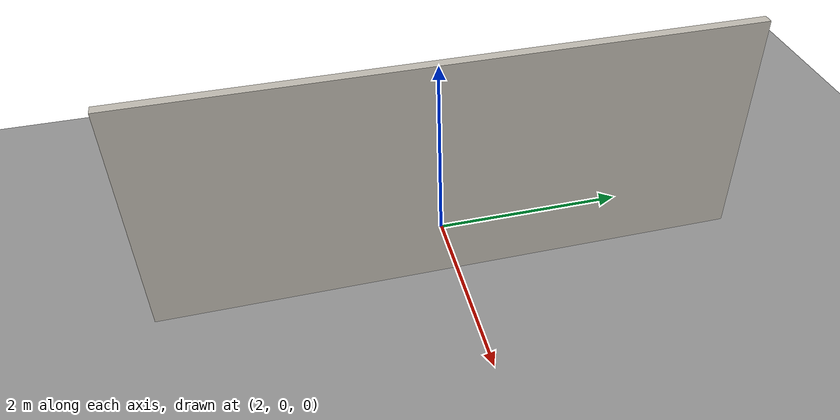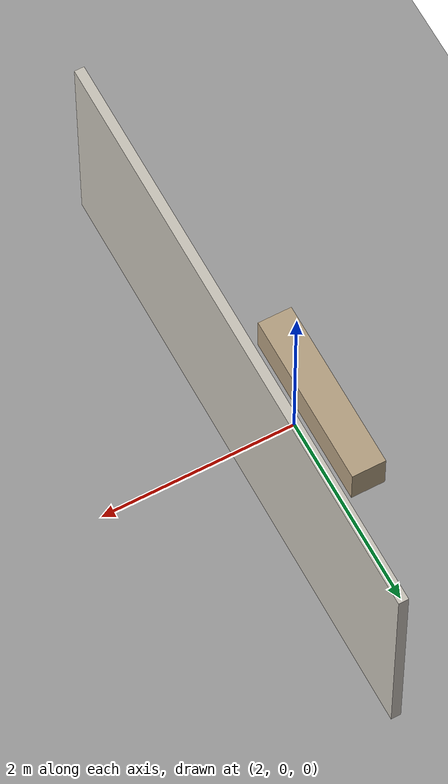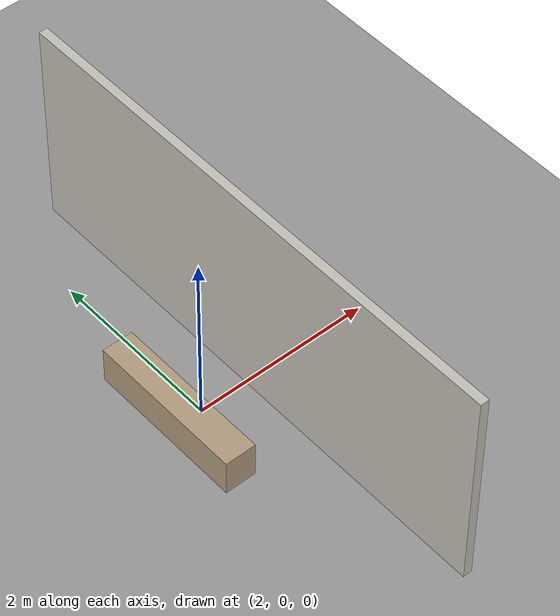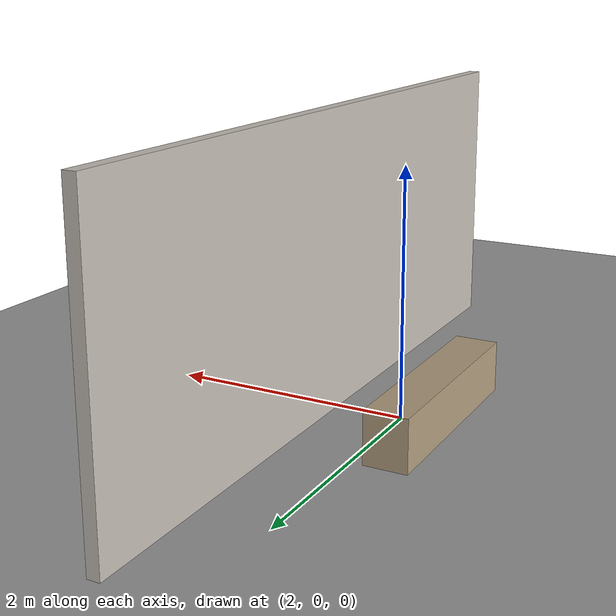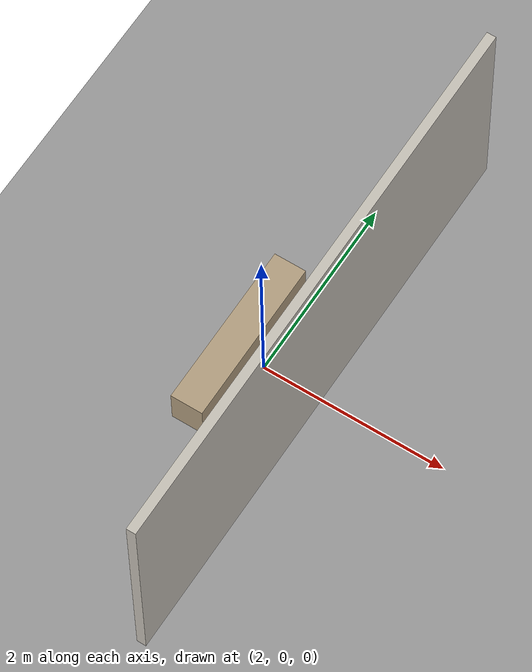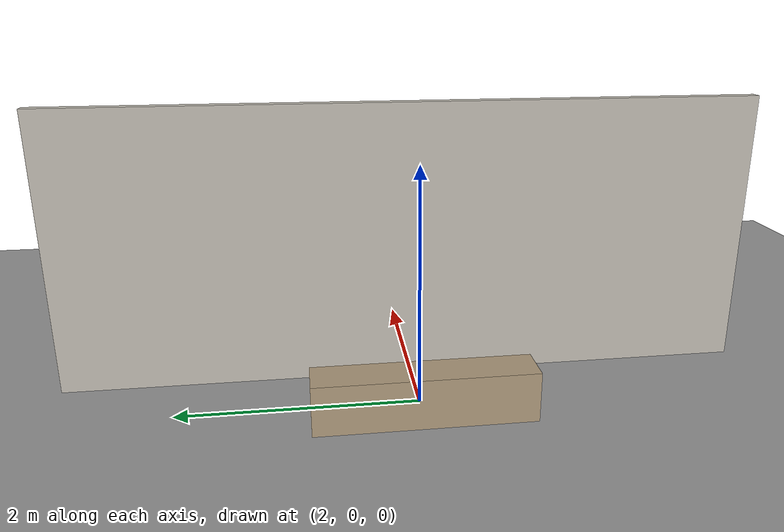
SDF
<?xml version="1.0" ?>
<sdf version="1.7">
  <world name="default">
    <plugin filename="gz-sim-physics-system" name="gz::sim::systems::Physics"/>
    <plugin filename="gz-sim-user-commands-system" name="gz::sim::systems::UserCommands"/>
    <plugin filename="gz-sim-scene-broadcaster-system" name="gz::sim::systems::SceneBroadcaster"/>
    <plugin filename="gz-sim-sensors-system" name="gz::sim::systems::Sensors"/>
    <plugin filename="gz-sim-imu-system" name="gz::sim::systems::Imu"/>
    <plugin filename="ignition-gazebo-forcetorque-system" name="ignition::gazebo::systems::ForceTorque"/>

    <gravity>0 0 -9.8</gravity>
    <physics name="5ms" type="ignored">
      <max_step_size>0.005</max_step_size>
      <real_time_factor>1.0</real_time_factor>
    </physics>
    <scene>
      <shadows>0</shadows>
      <ambient>0.55 0.55 0.55 1</ambient>
      <background>0.75 0.78 0.82 1</background>
    </scene>

    <light name="sun" type="directional">
      <cast_shadows>true</cast_shadows>
      <pose>0 0 10 0 0 0</pose>
      <diffuse>0.85 0.85 0.85 1</diffuse>
      <specular>0.2 0.2 0.2 1</specular>
      <attenuation><range>1000</range><constant>0.9</constant><linear>0.01</linear><quadratic>0.001</quadratic></attenuation>
      <direction>-0.5 0.1 -0.9</direction>
    </light>
    <light name="fill" type="directional">
      <cast_shadows>false</cast_shadows>
      <pose>2 -2 4 0 0 0</pose>
      <diffuse>0.35 0.35 0.38 1</diffuse>
      <specular>0.05 0.05 0.05 1</specular>
      <direction>0.4 0.6 -0.7</direction>
    </light>

    <model name="ground_plane">
      <static>true</static>
      <link name="link">
        <collision name="collision">
          <geometry><plane><normal>0 0 1</normal><size>30 30</size></plane></geometry>
        </collision>
        <visual name="visual">
          <geometry><plane><normal>0 0 1</normal><size>30 30</size></plane></geometry>
          <material><ambient>0.55 0.55 0.55 1</ambient><diffuse>0.6 0.6 0.6 1</diffuse></material>
        </visual>
      </link>
    </model>

    <!-- Back wall, so the head camera sees something other than empty sky. -->
    <model name="back_wall">
      <static>true</static>
      <pose>2.6 0 1.2 0 0 0</pose>
      <link name="link">
        <collision name="collision"><geometry><box><size>0.1 6.0 2.4</size></box></geometry></collision>
        <visual name="visual">
          <geometry><box><size>0.1 6.0 2.4</size></box></geometry>
          <material><ambient>0.72 0.70 0.66 1</ambient><diffuse>0.78 0.76 0.72 1</diffuse></material>
        </visual>
      </link>
    </model>

    <!-- Counter style table: solid to the floor, so the base stops in front of
         it and objects have to be picked from within reach of the near edge. -->
    <model name="pick_table">
      <static>true</static>
      <pose>1.725 0 0.21 0 0 0</pose>
      <link name="link">
        <collision name="collision">
          <geometry><box><size>0.35 1.8 0.42</size></box></geometry>
          <surface><friction><ode><mu>1.2</mu><mu2>1.2</mu2></ode></friction></surface>
        </collision>
        <visual name="visual">
          <geometry><box><size>0.35 1.8 0.42</size></box></geometry>
          <material><ambient>0.62 0.55 0.45 1</ambient><diffuse>0.70 0.62 0.50 1</diffuse></material>
        </visual>
      </link>
    </model>

    <!-- Third person camera for recordings. -->
    <model name="scene_camera">
      <static>true</static>
      <pose>0.15 -2.05 1.55 0 0.42 1.07</pose>
      <link name="link">
        <sensor name="scene_camera" type="camera">
          <camera>
            <horizontal_fov>1.15</horizontal_fov>
            <image><width>640</width><height>480</height><format>R8G8B8</format></image>
            <clip><near>0.1</near><far>30</far></clip>
          </camera>
          <always_on>1</always_on>
          <update_rate>15</update_rate>
          <visualize>false</visualize>
          <topic>scene_camera/image</topic>
        </sensor>
      </link>
    </model>
  </world>
</sdf>
